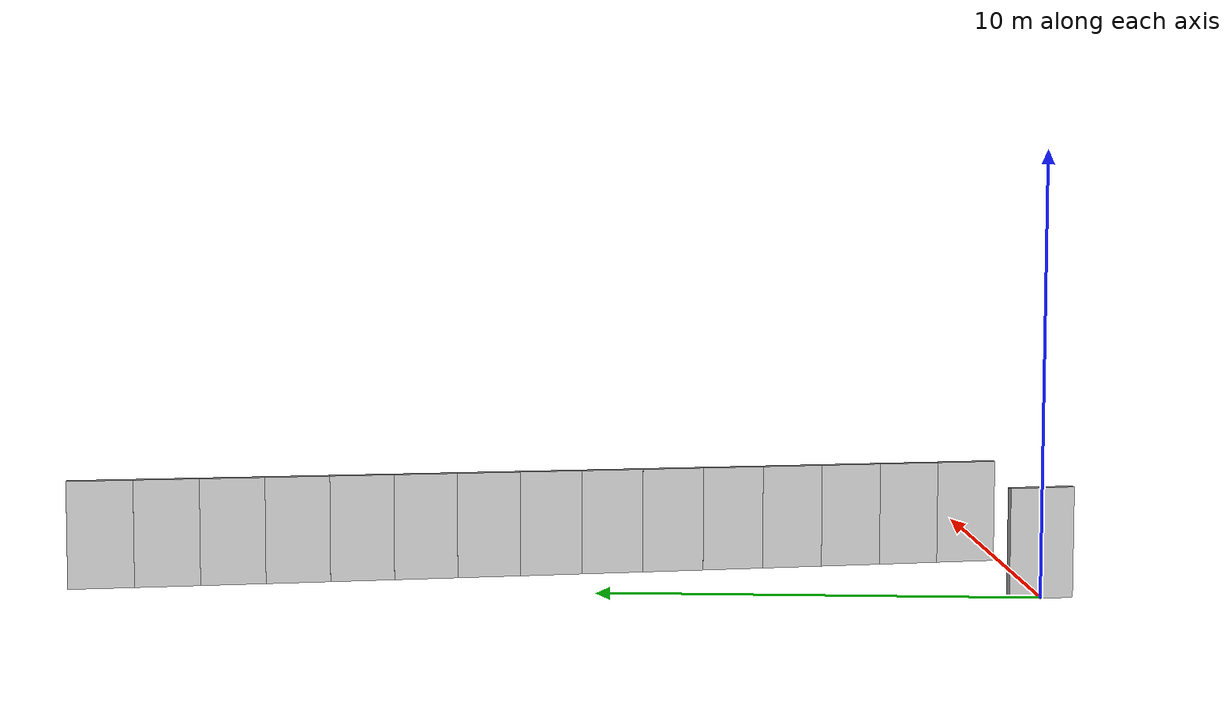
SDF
<?xml version="1.0" ?>
<sdf version="1.6">
  <model name="sps_0322">
    <pose frame="">0 0 0 0 -0 0</pose>
    <static>1</static>
    <self_collide>0</self_collide>
    <allow_auto_disable>0</allow_auto_disable>
    <link name="Wall5323">
      <kinematic>0</kinematic>
      <gravity>1</gravity>
      <self_collide>0</self_collide>
      <collision name="collision">
        <geometry>
          <box>
            <size>1.49634 0.15 2.5</size>
          </box>
        </geometry>
        <pose frame="">0 0 0 0 -0 0</pose>
      </collision>
      <visual name="visual">
        <geometry>
          <box>
            <size>1.49634 0.15 2.5</size>
          </box>
        </geometry>
        <pose frame="">0 0 0 0 -0 0</pose>
        <cast_shadows>1</cast_shadows>
        <transparency>0.0</transparency>
      </visual>
      <pose frame="">0.0738442 21.4219 1.25 0 0 -1.38856</pose>
    </link>
    <link name="Wall5324">
      <kinematic>0</kinematic>
      <gravity>1</gravity>
      <self_collide>0</self_collide>
      <collision name="collision">
        <geometry>
          <box>
            <size>1.49645 0.15 2.5</size>
          </box>
        </geometry>
        <pose frame="">0 0 0 0 -0 0</pose>
      </collision>
      <visual name="visual">
        <geometry>
          <box>
            <size>1.49645 0.15 2.5</size>
          </box>
        </geometry>
        <pose frame="">0 0 0 0 -0 0</pose>
        <cast_shadows>1</cast_shadows>
        <transparency>0.0</transparency>
      </visual>
      <pose frame="">0.346336 19.9505 1.25 0 0 -1.38679</pose>
    </link>
    <link name="Wall5325">
      <kinematic>0</kinematic>
      <gravity>1</gravity>
      <self_collide>0</self_collide>
      <collision name="collision">
        <geometry>
          <box>
            <size>1.4965 0.15 2.5</size>
          </box>
        </geometry>
        <pose frame="">0 0 0 0 -0 0</pose>
      </collision>
      <visual name="visual">
        <geometry>
          <box>
            <size>1.4965 0.15 2.5</size>
          </box>
        </geometry>
        <pose frame="">0 0 0 0 -0 0</pose>
        <cast_shadows>1</cast_shadows>
        <transparency>0.0</transparency>
      </visual>
      <pose frame="">0.621238 18.4795 1.25 0 0 -1.3853</pose>
    </link>
    <link name="Wall5326">
      <kinematic>0</kinematic>
      <gravity>1</gravity>
      <self_collide>0</self_collide>
      <collision name="collision">
        <geometry>
          <box>
            <size>1.49656 0.15 2.5</size>
          </box>
        </geometry>
        <pose frame="">0 0 0 0 -0 0</pose>
      </collision>
      <visual name="visual">
        <geometry>
          <box>
            <size>1.49656 0.15 2.5</size>
          </box>
        </geometry>
        <pose frame="">0 0 0 0 -0 0</pose>
        <cast_shadows>1</cast_shadows>
        <transparency>0.0</transparency>
      </visual>
      <pose frame="">0.898551 17.0089 1.25 0 0 -1.38353</pose>
    </link>
    <link name="Wall5327">
      <kinematic>0</kinematic>
      <gravity>1</gravity>
      <self_collide>0</self_collide>
      <collision name="collision">
        <geometry>
          <box>
            <size>1.49657 0.15 2.5</size>
          </box>
        </geometry>
        <pose frame="">0 0 0 0 -0 0</pose>
      </collision>
      <visual name="visual">
        <geometry>
          <box>
            <size>1.49657 0.15 2.5</size>
          </box>
        </geometry>
        <pose frame="">0 0 0 0 -0 0</pose>
        <cast_shadows>1</cast_shadows>
        <transparency>0.0</transparency>
      </visual>
      <pose frame="">1.17815 15.5387 1.25 0 0 -1.3822</pose>
    </link>
    <link name="Wall5328">
      <kinematic>0</kinematic>
      <gravity>1</gravity>
      <self_collide>0</self_collide>
      <collision name="collision">
        <geometry>
          <box>
            <size>1.4964 0.15 2.5</size>
          </box>
        </geometry>
        <pose frame="">0 0 0 0 -0 0</pose>
      </collision>
      <visual name="visual">
        <geometry>
          <box>
            <size>1.4964 0.15 2.5</size>
          </box>
        </geometry>
        <pose frame="">0 0 0 0 -0 0</pose>
        <cast_shadows>1</cast_shadows>
        <transparency>0.0</transparency>
      </visual>
      <pose frame="">1.46004 14.069 1.25 0 0 -1.38039</pose>
    </link>
    <link name="Wall5329">
      <kinematic>0</kinematic>
      <gravity>1</gravity>
      <self_collide>0</self_collide>
      <collision name="collision">
        <geometry>
          <box>
            <size>1.4967 0.15 2.5</size>
          </box>
        </geometry>
        <pose frame="">0 0 0 0 -0 0</pose>
      </collision>
      <visual name="visual">
        <geometry>
          <box>
            <size>1.4967 0.15 2.5</size>
          </box>
        </geometry>
        <pose frame="">0 0 0 0 -0 0</pose>
        <cast_shadows>1</cast_shadows>
        <transparency>0.0</transparency>
      </visual>
      <pose frame="">1.74435 12.5997 1.25 0 0 -1.37894</pose>
    </link>
    <link name="Wall5330">
      <kinematic>0</kinematic>
      <gravity>1</gravity>
      <self_collide>0</self_collide>
      <collision name="collision">
        <geometry>
          <box>
            <size>1.49646 0.15 2.5</size>
          </box>
        </geometry>
        <pose frame="">0 0 0 0 -0 0</pose>
      </collision>
      <visual name="visual">
        <geometry>
          <box>
            <size>1.49646 0.15 2.5</size>
          </box>
        </geometry>
        <pose frame="">0 0 0 0 -0 0</pose>
        <cast_shadows>1</cast_shadows>
        <transparency>0.0</transparency>
      </visual>
      <pose frame="">2.03084 11.1308 1.25 0 0 -1.37741</pose>
    </link>
    <link name="Wall5331">
      <kinematic>0</kinematic>
      <gravity>1</gravity>
      <self_collide>0</self_collide>
      <collision name="collision">
        <geometry>
          <box>
            <size>1.49657 0.15 2.5</size>
          </box>
        </geometry>
        <pose frame="">0 0 0 0 -0 0</pose>
      </collision>
      <visual name="visual">
        <geometry>
          <box>
            <size>1.49657 0.15 2.5</size>
          </box>
        </geometry>
        <pose frame="">0 0 0 0 -0 0</pose>
        <cast_shadows>1</cast_shadows>
        <transparency>0.0</transparency>
      </visual>
      <pose frame="">2.31966 9.6624 1.25 0 0 -1.37576</pose>
    </link>
    <link name="Wall5332">
      <kinematic>0</kinematic>
      <gravity>1</gravity>
      <self_collide>0</self_collide>
      <collision name="collision">
        <geometry>
          <box>
            <size>1.49667 0.15 2.5</size>
          </box>
        </geometry>
        <pose frame="">0 0 0 0 -0 0</pose>
      </collision>
      <visual name="visual">
        <geometry>
          <box>
            <size>1.49667 0.15 2.5</size>
          </box>
        </geometry>
        <pose frame="">0 0 0 0 -0 0</pose>
        <cast_shadows>1</cast_shadows>
        <transparency>0.0</transparency>
      </visual>
      <pose frame="">2.61086 8.19438 1.25 0 0 -1.37419</pose>
    </link>
    <link name="Wall5333">
      <kinematic>0</kinematic>
      <gravity>1</gravity>
      <self_collide>0</self_collide>
      <collision name="collision">
        <geometry>
          <box>
            <size>1.49649 0.15 2.5</size>
          </box>
        </geometry>
        <pose frame="">0 0 0 0 -0 0</pose>
      </collision>
      <visual name="visual">
        <geometry>
          <box>
            <size>1.49649 0.15 2.5</size>
          </box>
        </geometry>
        <pose frame="">0 0 0 0 -0 0</pose>
        <cast_shadows>1</cast_shadows>
        <transparency>0.0</transparency>
      </visual>
      <pose frame="">2.90444 6.72688 1.25 0 0 -1.3725</pose>
    </link>
    <link name="Wall5334">
      <kinematic>0</kinematic>
      <gravity>1</gravity>
      <self_collide>0</self_collide>
      <collision name="collision">
        <geometry>
          <box>
            <size>1.49656 0.15 2.5</size>
          </box>
        </geometry>
        <pose frame="">0 0 0 0 -0 0</pose>
      </collision>
      <visual name="visual">
        <geometry>
          <box>
            <size>1.49656 0.15 2.5</size>
          </box>
        </geometry>
        <pose frame="">0 0 0 0 -0 0</pose>
        <cast_shadows>1</cast_shadows>
        <transparency>0.0</transparency>
      </visual>
      <pose frame="">3.20034 5.2599 1.25 0 0 -1.37102</pose>
    </link>
    <link name="Wall5335">
      <kinematic>0</kinematic>
      <gravity>1</gravity>
      <self_collide>0</self_collide>
      <collision name="collision">
        <geometry>
          <box>
            <size>1.4964 0.15 2.5</size>
          </box>
        </geometry>
        <pose frame="">0 0 0 0 -0 0</pose>
      </collision>
      <visual name="visual">
        <geometry>
          <box>
            <size>1.4964 0.15 2.5</size>
          </box>
        </geometry>
        <pose frame="">0 0 0 0 -0 0</pose>
        <cast_shadows>1</cast_shadows>
        <transparency>0.0</transparency>
      </visual>
      <pose frame="">3.49844 3.79341 1.25 0 0 -1.3695</pose>
    </link>
    <link name="Wall5336">
      <kinematic>0</kinematic>
      <gravity>1</gravity>
      <self_collide>0</self_collide>
      <collision name="collision">
        <geometry>
          <box>
            <size>1.49639 0.15 2.5</size>
          </box>
        </geometry>
        <pose frame="">0 0 0 0 -0 0</pose>
      </collision>
      <visual name="visual">
        <geometry>
          <box>
            <size>1.49639 0.15 2.5</size>
          </box>
        </geometry>
        <pose frame="">0 0 0 0 -0 0</pose>
        <cast_shadows>1</cast_shadows>
        <transparency>0.0</transparency>
      </visual>
      <pose frame="">3.79894 2.3275 1.25 0 0 -1.36771</pose>
    </link>
    <link name="Wall5337">
      <kinematic>0</kinematic>
      <gravity>1</gravity>
      <self_collide>0</self_collide>
      <collision name="collision">
        <geometry>
          <box>
            <size>1.4966 0.15 2.5</size>
          </box>
        </geometry>
        <pose frame="">0 0 0 0 -0 0</pose>
      </collision>
      <visual name="visual">
        <geometry>
          <box>
            <size>1.4966 0.15 2.5</size>
          </box>
        </geometry>
        <pose frame="">0 0 0 0 -0 0</pose>
        <cast_shadows>1</cast_shadows>
        <transparency>0.0</transparency>
      </visual>
      <pose frame="">4.10186 0.861983 1.25 0 0 -1.36623</pose>
    </link>
    <link name="Wall7133">
      <kinematic>0</kinematic>
      <gravity>1</gravity>
      <self_collide>0</self_collide>
      <collision name="collision">
        <geometry>
          <box>
            <size>1.50314 0.15 2.5</size>
          </box>
        </geometry>
        <pose frame="">0 0 0 0 -0 0</pose>
      </collision>
      <visual name="visual">
        <geometry>
          <box>
            <size>1.50314 0.15 2.5</size>
          </box>
        </geometry>
        <pose frame="">0 0 0 0 -0 0</pose>
        <cast_shadows>1</cast_shadows>
        <transparency>0.0</transparency>
      </visual>
      <pose frame="">0.0487588 0.0207662 1.25 0 0 -1.36623</pose>
    </link>
  </model>
</sdf>
